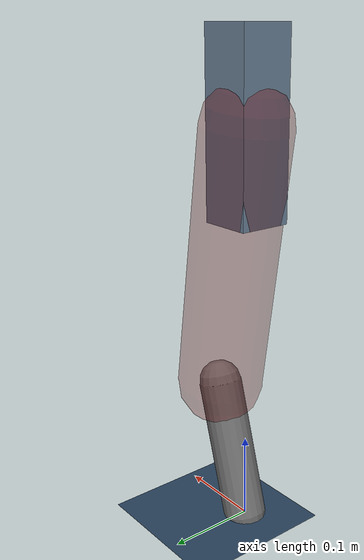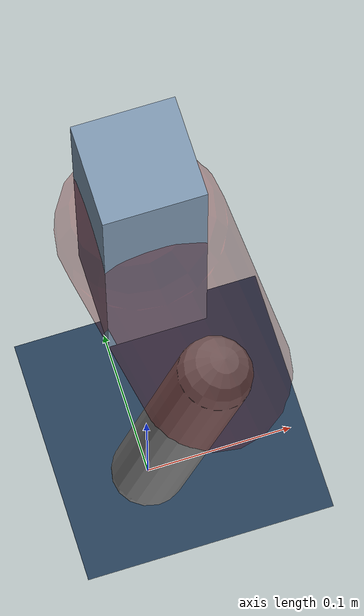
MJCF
<mujoco model="Hopper2D">
	<compiler inertiafromgeom="true" angle="radian" />
	<option timestep="0.001" integrator="implicit" cone="elliptic" solver="Newton" tolerance="1e-10" />

	<default>
		<geom contype="1" conaffinity="1" condim="3" friction="2 0.005 0.0001" solref="0.005 1" />
		<joint limited="true" damping="0.1" />
	</default>

	<asset>
		<texture name="skybox" type="skybox" builtin="gradient" rgb1=".4 .6 .8" rgb2="0 0 0" width="800" height="800" />
		<texture name="grid" type="2d" builtin="checker" rgb1=".1 .2 .3" rgb2=".2 .3 .4" width="300" height="300" mark="edge" markrgb=".2 .3 .4" />
		<material name="ground" texture="grid" texrepeat="1 1" texuniform="true" reflectance="0.1" />
		<material name="leg" rgba="0.5 0.6 0.7 1" />
	</asset>

	<worldbody>

		<geom name="floor" type="plane" size="5 5 0.25" material="ground" />

		<light directional="false" diffuse="0.8 0.8 0.8" specular="0.3 0.3 0.3" pos="0 0 2" dir="0 0 -1" />
		<light mode="targetbodycom" target="base" directional="false" diffuse="0.8 0.8 0.8" specular="0.3 0.3 0.3" pos="0 0 2" dir="0 0 -1" />

		<camera name="fixed" pos="0 -2 1" xyaxes="1 0 0 0 0 1" />
		<camera name="tracking" mode="trackcom" pos="0 -3 1" />

		<body name="root" pos="0 0 0.4584616341366242">
			<joint name="slide_x" type="slide" axis="1 0 0" range="-100 100" />
			<joint name="slide_z" type="slide" axis="0 0 1" range="0 10" />

			<body name="base" pos="0 0 0">
				<geom name="torso" type="box" size="0.03 0.03 0.1" mass="2.789" material="leg" />

				<body name="link1" pos="0 0 0" euler="0 1.4192142735476394 0">
					<joint type="hinge" axis="0 -1 0" pos="0 0 0" name="hinge1" limited="true" range="-3.14 3.14" stiffness="0" damping="0.1" />
					<geom name="thigh" type="capsule" fromto="0 0 0 0.3037701059157321 0 0" size="0.05" rgba="0.5 0 0 0.3" mass="0.9989792859724768" />

					<body name="link2" pos="0.3037701059157321 0 0" euler="0 0.43383534716981703 0">
						<joint type="hinge" axis="0 -1 0" pos="0 0 0" name="hinge2" limited="true" range="-3.14 3.14" stiffness="0" damping="0.1" />
						<geom name="shank" type="capsule" fromto="0 0 0 0.1646915282208921 0 0" size="0.025" mass="0.3706532225767137" />

					</body>
				</body>
			</body>
		</body>
	</worldbody>

	<actuator>
		<motor name="torque1" joint="hinge1" ctrlrange="-86.61521411037579 86.61521411037579" ctrllimited="true" gear="1" />
		<motor name="torque2" joint="hinge2" ctrlrange="-70.39213174498225 70.39213174498225" ctrllimited="true" gear="1" />
	</actuator>
</mujoco>
